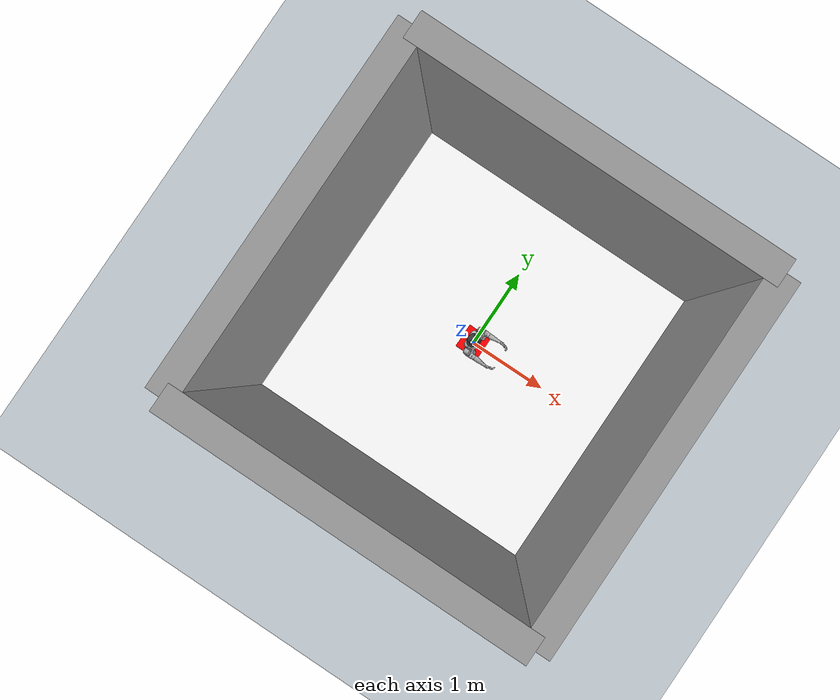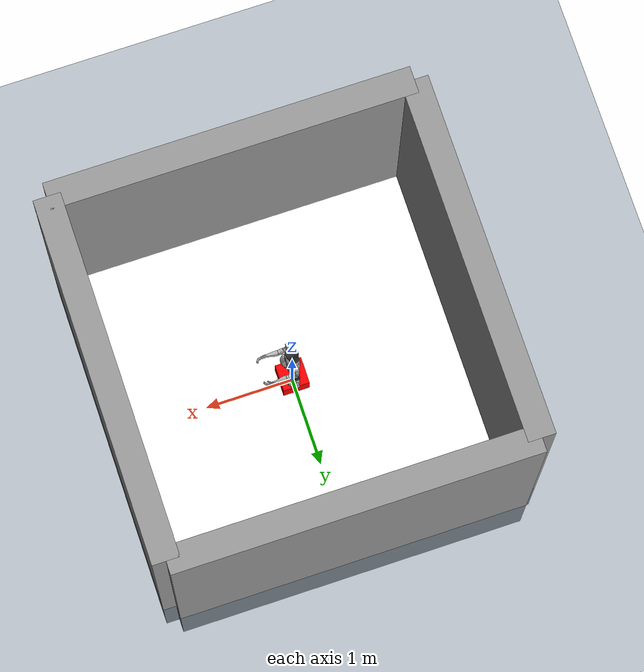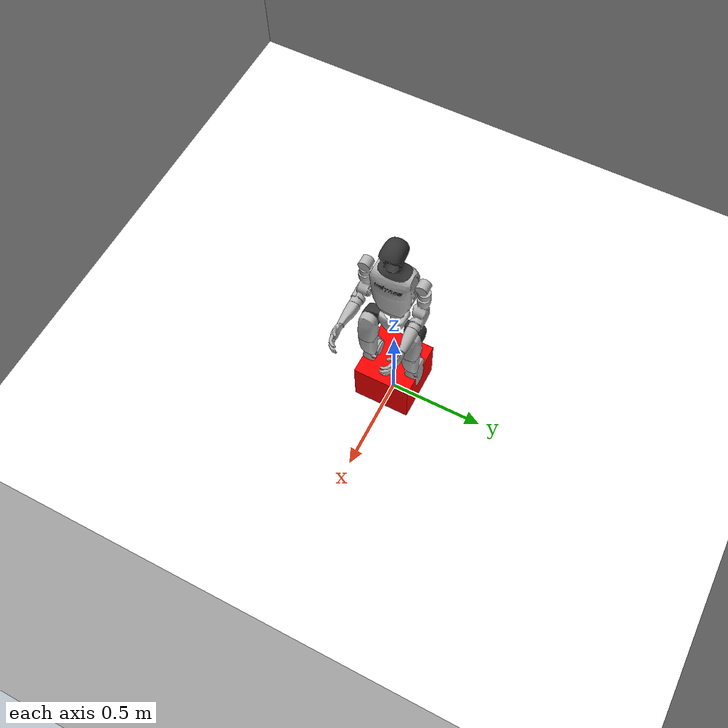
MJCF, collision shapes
<?xml version="1.0" ?>
<mujoco model="Unitree G1 with Room">
  <include file="g1_23dof.xml" />

  <asset>
    <material name="floor_material" rgba="1 1 1 1" specular="0" shininess="0" reflectance="0" />
    <material name="wall_material" rgba="0.6 0.6 0.6 1" specular="0.2" shininess="0.05" />
    <material name="obstacle_material" rgba="1 0 0 1" specular="0.6" shininess="0.2" />
  </asset>

  <extension>
  </extension>

  <option timestep="0.002" gravity="0 0 -9.81">
    <flag warmstart="enable" />
  </option>

  <default>
    <geom conaffinity="1" condim="3" friction="2.5 0.01 0.0001" />
    <joint damping="2.0" />
  </default>

  <worldbody>
    <!-- White floor inside the room (4m x 4m box) -->
    <body name="floor">
      <geom name="floor_white" type="box" size="2 2 0.05" pos="0 0 0" material="floor_material" rgba="1 1 1 1" friction="3.0 0.01 0.0001" condim="4" solimp="0.999 0.999 0.0001" solref="0.001 1" />
    </body>
    <!-- Room walls -->
    <!-- Front wall -->
    <body name="front_wall">
      <geom name="front_wall_geom" type="box" size="2 0.15 2" pos="0 2 1" material="wall_material" friction="1" />
    </body>

    <!-- Back wall -->
    <body name="back_wall">
      <geom name="back_wall_geom" type="box" size="2 0.15 2" pos="0 -2 1" material="wall_material" friction="1" />
    </body>

    <!-- Left wall -->
    <body name="left_wall">
      <geom name="left_wall_geom" type="box" size="0.15 2 2" pos="-2 0 1" material="wall_material" friction="1" />
    </body>

    <!-- Right wall -->
    <body name="right_wall">
      <geom name="right_wall_geom" type="box" size="0.15 2 2" pos="2 0 1" material="wall_material" friction="1" />
    </body>

    <!-- Single obstacle box -->
    <body name="obstacle_box">
      <geom name="obstacle_geom" type="box" size="0.15 0.15 0.15" pos="0 0 0.15" material="obstacle_material" friction="0.8" />
    </body>
  </worldbody>

</mujoco>

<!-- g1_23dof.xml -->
<mujoco model="g1_23dof">
  <compiler angle="radian" meshdir="meshes"/>

  <asset>
    <mesh name="pelvis" file="pelvis.STL"/>
    <mesh name="pelvis_contour_link" file="pelvis_contour_link.STL"/>
    <mesh name="left_hip_pitch_link" file="left_hip_pitch_link.STL"/>
    <mesh name="left_hip_roll_link" file="left_hip_roll_link.STL"/>
    <mesh name="left_hip_yaw_link" file="left_hip_yaw_link.STL"/>
    <mesh name="left_knee_link" file="left_knee_link.STL"/>
    <mesh name="left_ankle_pitch_link" file="left_ankle_pitch_link.STL"/>
    <mesh name="left_ankle_roll_link" file="left_ankle_roll_link.STL"/>
    <mesh name="right_hip_pitch_link" file="right_hip_pitch_link.STL"/>
    <mesh name="right_hip_roll_link" file="right_hip_roll_link.STL"/>
    <mesh name="right_hip_yaw_link" file="right_hip_yaw_link.STL"/>
    <mesh name="right_knee_link" file="right_knee_link.STL"/>
    <mesh name="right_ankle_pitch_link" file="right_ankle_pitch_link.STL"/>
    <mesh name="right_ankle_roll_link" file="right_ankle_roll_link.STL"/>
    <mesh name="waist_yaw_link" file="waist_yaw_link.STL"/>
    <mesh name="torso_link" file="torso_link.STL"/>
    <mesh name="logo_link" file="logo_link.STL"/>
    <mesh name="head_link" file="head_link.STL"/>
    <mesh name="waist_support_link" file="waist_support_link.STL"/>
    <mesh name="left_shoulder_pitch_link" file="left_shoulder_pitch_link.STL"/>
    <mesh name="left_shoulder_roll_link" file="left_shoulder_roll_link.STL"/>
    <mesh name="left_shoulder_yaw_link" file="left_shoulder_yaw_link.STL"/>
    <mesh name="left_elbow_link" file="left_elbow_link.STL"/>
    <mesh name="left_wrist_roll_rubber_hand" file="left_wrist_roll_rubber_hand.STL"/>
    <mesh name="right_shoulder_pitch_link" file="right_shoulder_pitch_link.STL"/>
    <mesh name="right_shoulder_roll_link" file="right_shoulder_roll_link.STL"/>
    <mesh name="right_shoulder_yaw_link" file="right_shoulder_yaw_link.STL"/>
    <mesh name="right_elbow_link" file="right_elbow_link.STL"/>
    <mesh name="right_wrist_roll_rubber_hand" file="right_wrist_roll_rubber_hand.STL"/>
  </asset>

  <worldbody>
    <body name="pelvis" pos="0 0 0.793">
      <inertial pos="0 0 -0.07605" quat="1 0 -0.000399148 0" mass="3.813" diaginertia="0.010549 0.0093089 0.0079184"/>
      <joint name="floating_base_joint" type="free" limited="false" actuatorfrclimited="false"/>
      <geom type="mesh" contype="0" conaffinity="0" group="1" density="0" rgba="0.2 0.2 0.2 1" mesh="pelvis"/>
      <geom type="mesh" contype="0" conaffinity="0" group="1" density="0" rgba="0.7 0.7 0.7 1" mesh="pelvis_contour_link"/>
      <geom type="mesh" rgba="0.7 0.7 0.7 1" mesh="pelvis_contour_link"/>
      <site name="imu_in_pelvis" size="0.01" pos="0.04525 0 -0.08339"/>
      <body name="left_hip_pitch_link" pos="0 0.064452 -0.1027">
        <inertial pos="0.002741 0.047791 -0.02606" quat="0.954862 0.293964 0.0302556 0.030122" mass="1.35" diaginertia="0.00181517 0.00153422 0.00116212"/>
        <joint name="left_hip_pitch_joint" pos="0 0 0" axis="0 1 0" range="-2.5307 2.8798" actuatorfrcrange="-88 88"/>
        <geom type="mesh" contype="0" conaffinity="0" group="1" density="0" rgba="0.2 0.2 0.2 1" mesh="left_hip_pitch_link"/>
        <geom type="mesh" rgba="0.2 0.2 0.2 1" mesh="left_hip_pitch_link"/>
        <body name="left_hip_roll_link" pos="0 0.052 -0.030465" quat="0.996179 0 -0.0873386 0">
          <inertial pos="0.029812 -0.001045 -0.087934" quat="0.977808 -1.97119e-05 0.205576 -0.0403793" mass="1.52" diaginertia="0.00254986 0.00241169 0.00148755"/>
          <joint name="left_hip_roll_joint" pos="0 0 0" axis="1 0 0" range="-0.5236 2.9671" actuatorfrcrange="-88 88"/>
          <geom type="mesh" contype="0" conaffinity="0" group="1" density="0" rgba="0.7 0.7 0.7 1" mesh="left_hip_roll_link"/>
          <geom type="mesh" rgba="0.7 0.7 0.7 1" mesh="left_hip_roll_link"/>
          <body name="left_hip_yaw_link" pos="0.025001 0 -0.12412">
            <inertial pos="-0.057709 -0.010981 -0.15078" quat="0.600598 0.15832 0.223482 0.751181" mass="1.702" diaginertia="0.00776166 0.00717575 0.00160139"/>
            <joint name="left_hip_yaw_joint" pos="0 0 0" axis="0 0 1" range="-2.7576 2.7576" actuatorfrcrange="-88 88"/>
            <geom type="mesh" contype="0" conaffinity="0" group="1" density="0" rgba="0.7 0.7 0.7 1" mesh="left_hip_yaw_link"/>
            <geom type="mesh" rgba="0.7 0.7 0.7 1" mesh="left_hip_yaw_link"/>
            <body name="left_knee_link" pos="-0.078273 0.0021489 -0.17734" quat="0.996179 0 0.0873386 0">
              <inertial pos="0.005457 0.003964 -0.12074" quat="0.923418 -0.0327699 0.0158246 0.382067" mass="1.932" diaginertia="0.0113804 0.0112778 0.00146458"/>
              <joint name="left_knee_joint" pos="0 0 0" axis="0 1 0" range="-0.087267 2.8798" actuatorfrcrange="-139 139"/>
              <geom type="mesh" contype="0" conaffinity="0" group="1" density="0" rgba="0.7 0.7 0.7 1" mesh="left_knee_link"/>
              <geom type="mesh" rgba="0.7 0.7 0.7 1" mesh="left_knee_link"/>
              <body name="left_ankle_pitch_link" pos="0 -9.4445e-05 -0.30001">
                <inertial pos="-0.007269 0 0.011137" quat="0.603053 0.369225 0.369225 0.603053" mass="0.074" diaginertia="1.89e-05 1.40805e-05 6.9195e-06"/>
                <joint name="left_ankle_pitch_joint" pos="0 0 0" axis="0 1 0" range="-0.87267 0.5236" actuatorfrcrange="-50 50"/>
                <geom type="mesh" contype="0" conaffinity="0" group="1" density="0" rgba="0.7 0.7 0.7 1" mesh="left_ankle_pitch_link"/>
                <geom type="mesh" rgba="0.7 0.7 0.7 1" mesh="left_ankle_pitch_link"/>
                <body name="left_ankle_roll_link" pos="0 0 -0.017558">
                  <inertial pos="0.026505 0 -0.016425" quat="-0.000481092 0.728482 -0.000618967 0.685065" mass="0.608" diaginertia="0.00167218 0.0016161 0.000217621"/>
                  <joint name="left_ankle_roll_joint" pos="0 0 0" axis="1 0 0" range="-0.2618 0.2618" actuatorfrcrange="-50 50"/>
                  <geom type="mesh" contype="0" conaffinity="0" group="1" density="0" rgba="0.2 0.2 0.2 1" mesh="left_ankle_roll_link"/>
                  <geom size="0.005" pos="-0.05 0.025 -0.03" rgba="0.2 0.2 0.2 1" friction="3.5 0.01 0.0001" condim="4" solimp="0.999 0.999 0.0001" priority="1"/>
                  <geom size="0.005" pos="-0.05 -0.025 -0.03" rgba="0.2 0.2 0.2 1" friction="3.5 0.01 0.0001" condim="4" solimp="0.999 0.999 0.0001" priority="1"/>
                  <geom size="0.005" pos="0.12 0.03 -0.03" rgba="0.2 0.2 0.2 1" friction="3.5 0.01 0.0001" condim="4" solimp="0.999 0.999 0.0001" priority="1"/>
                  <geom size="0.005" pos="0.12 -0.03 -0.03" rgba="0.2 0.2 0.2 1" friction="3.5 0.01 0.0001" condim="4" solimp="0.999 0.999 0.0001" priority="1"/>
                </body>
              </body>
            </body>
          </body>
        </body>
      </body>
      <body name="right_hip_pitch_link" pos="0 -0.064452 -0.1027">
        <inertial pos="0.002741 -0.047791 -0.02606" quat="0.954862 -0.293964 0.0302556 -0.030122" mass="1.35" diaginertia="0.00181517 0.00153422 0.00116212"/>
        <joint name="right_hip_pitch_joint" pos="0 0 0" axis="0 1 0" range="-2.5307 2.8798" actuatorfrcrange="-88 88"/>
        <geom type="mesh" contype="0" conaffinity="0" group="1" density="0" rgba="0.2 0.2 0.2 1" mesh="right_hip_pitch_link"/>
        <geom type="mesh" rgba="0.2 0.2 0.2 1" mesh="right_hip_pitch_link"/>
        <body name="right_hip_roll_link" pos="0 -0.052 -0.030465" quat="0.996179 0 -0.0873386 0">
          <inertial pos="0.029812 0.001045 -0.087934" quat="0.977808 1.97119e-05 0.205576 0.0403793" mass="1.52" diaginertia="0.00254986 0.00241169 0.00148755"/>
          <joint name="right_hip_roll_joint" pos="0 0 0" axis="1 0 0" range="-2.9671 0.5236" actuatorfrcrange="-88 88"/>
          <geom type="mesh" contype="0" conaffinity="0" group="1" density="0" rgba="0.7 0.7 0.7 1" mesh="right_hip_roll_link"/>
          <geom type="mesh" rgba="0.7 0.7 0.7 1" mesh="right_hip_roll_link"/>
          <body name="right_hip_yaw_link" pos="0.025001 0 -0.12412">
            <inertial pos="-0.057709 0.010981 -0.15078" quat="0.751181 0.223482 0.15832 0.600598" mass="1.702" diaginertia="0.00776166 0.00717575 0.00160139"/>
            <joint name="right_hip_yaw_joint" pos="0 0 0" axis="0 0 1" range="-2.7576 2.7576" actuatorfrcrange="-88 88"/>
            <geom type="mesh" contype="0" conaffinity="0" group="1" density="0" rgba="0.7 0.7 0.7 1" mesh="right_hip_yaw_link"/>
            <geom type="mesh" rgba="0.7 0.7 0.7 1" mesh="right_hip_yaw_link"/>
            <body name="right_knee_link" pos="-0.078273 -0.0021489 -0.17734" quat="0.996179 0 0.0873386 0">
              <inertial pos="0.005457 -0.003964 -0.12074" quat="0.923439 0.0345276 0.0116333 -0.382012" mass="1.932" diaginertia="0.011374 0.0112843 0.00146452"/>
              <joint name="right_knee_joint" pos="0 0 0" axis="0 1 0" range="-0.087267 2.8798" actuatorfrcrange="-139 139"/>
              <geom type="mesh" contype="0" conaffinity="0" group="1" density="0" rgba="0.7 0.7 0.7 1" mesh="right_knee_link"/>
              <geom type="mesh" rgba="0.7 0.7 0.7 1" mesh="right_knee_link"/>
              <body name="right_ankle_pitch_link" pos="0 9.4445e-05 -0.30001">
                <inertial pos="-0.007269 0 0.011137" quat="0.603053 0.369225 0.369225 0.603053" mass="0.074" diaginertia="1.89e-05 1.40805e-05 6.9195e-06"/>
                <joint name="right_ankle_pitch_joint" pos="0 0 0" axis="0 1 0" range="-0.87267 0.5236" actuatorfrcrange="-50 50"/>
                <geom type="mesh" contype="0" conaffinity="0" group="1" density="0" rgba="0.7 0.7 0.7 1" mesh="right_ankle_pitch_link"/>
                <geom type="mesh" rgba="0.7 0.7 0.7 1" mesh="right_ankle_pitch_link"/>
                <body name="right_ankle_roll_link" pos="0 0 -0.017558">
                  <inertial pos="0.026505 0 -0.016425" quat="0.000481092 0.728482 0.000618967 0.685065" mass="0.608" diaginertia="0.00167218 0.0016161 0.000217621"/>
                  <joint name="right_ankle_roll_joint" pos="0 0 0" axis="1 0 0" range="-0.2618 0.2618" actuatorfrcrange="-50 50"/>
                  <geom type="mesh" contype="0" conaffinity="0" group="1" density="0" rgba="0.2 0.2 0.2 1" mesh="right_ankle_roll_link"/>
                  <geom size="0.005" pos="-0.05 0.025 -0.03" rgba="0.2 0.2 0.2 1" friction="3.5 0.01 0.0001" condim="4" solimp="0.999 0.999 0.0001" priority="1"/>
                  <geom size="0.005" pos="-0.05 -0.025 -0.03" rgba="0.2 0.2 0.2 1" friction="3.5 0.01 0.0001" condim="4" solimp="0.999 0.999 0.0001" priority="1"/>
                  <geom size="0.005" pos="0.12 0.03 -0.03" rgba="0.2 0.2 0.2 1" friction="3.5 0.01 0.0001" condim="4" solimp="0.999 0.999 0.0001" priority="1"/>
                  <geom size="0.005" pos="0.12 -0.03 -0.03" rgba="0.2 0.2 0.2 1" friction="3.5 0.01 0.0001" condim="4" solimp="0.999 0.999 0.0001" priority="1"/>
                </body>
              </body>
            </body>
          </body>
        </body>
      </body>
      <body name="torso_link" pos="-0.0039635 0 0.054">
        <inertial pos="0.0034309 0.00025505 0.174524" quat="0.99988 0.000261157 0.0149809 -0.0038211" mass="9.842" diaginertia="0.135151 0.123088 0.0327256"/>
        <joint name="waist_yaw_joint" pos="0 0 0" axis="0 0 1" range="-2.618 2.618" actuatorfrcrange="-88 88"/>
        <geom type="mesh" contype="0" conaffinity="0" group="1" density="0" rgba="0.7 0.7 0.7 1" mesh="torso_link"/>
        <geom type="mesh" rgba="0.7 0.7 0.7 1" mesh="torso_link"/>
        <geom pos="0.0039635 0 -0.054" quat="1 0 0 0" type="mesh" contype="0" conaffinity="0" group="1" density="0" rgba="0.7 0.7 0.7 1" mesh="waist_yaw_link"/>
        <geom pos="0.0039635 0 -0.054" quat="1 0 0 0" type="mesh" contype="0" conaffinity="0" group="1" density="0" rgba="0.2 0.2 0.2 1" mesh="logo_link"/>
        <geom pos="0.0039635 0 -0.054" quat="1 0 0 0" type="mesh" rgba="0.2 0.2 0.2 1" mesh="logo_link"/>
        <geom pos="0.0039635 0 -0.054" type="mesh" contype="0" conaffinity="0" group="1" density="0" rgba="0.2 0.2 0.2 1" mesh="head_link"/>
        <geom pos="0.0039635 0 -0.054" type="mesh" rgba="0.2 0.2 0.2 1" mesh="head_link"/>
        <geom pos="0.0039635 0 -0.054" quat="1 0 0 0" type="mesh" contype="0" conaffinity="0" group="1" density="0" rgba="0.7 0.7 0.7 1" mesh="waist_support_link"/>
        <geom pos="0.0039635 0 -0.054" quat="1 0 0 0" type="mesh" rgba="0.7 0.7 0.7 1" mesh="waist_support_link"/>
        <site name="imu_in_torso" size="0.01" pos="-0.03959 -0.00224 0.13792"/>
        <!-- Camera mounted on torso (head area) -->
        <camera name="rgb_camera" pos="0.15 0 0.25" xyaxes="0 -1 0 0.1 0 1" fovy="90" />
        <body name="left_shoulder_pitch_link" pos="0.0039563 0.10022 0.23778" quat="0.990264 0.139201 1.38722e-05 -9.86868e-05">
          <inertial pos="0 0.035892 -0.011628" quat="0.654152 0.0130458 -0.326267 0.68225" mass="0.718" diaginertia="0.000465864 0.000432842 0.000406394"/>
          <joint name="left_shoulder_pitch_joint" pos="0 0 0" axis="0 1 0" range="-3.0892 2.6704" actuatorfrcrange="-25 25"/>
          <geom type="mesh" contype="0" conaffinity="0" group="1" density="0" rgba="0.7 0.7 0.7 1" mesh="left_shoulder_pitch_link"/>
          <geom size="0.03 0.025" pos="0 0.04 -0.01" quat="0.707107 0 0.707107 0" type="cylinder" rgba="0.7 0.7 0.7 1"/>
          <body name="left_shoulder_roll_link" pos="0 0.038 -0.013831" quat="0.990268 -0.139172 0 0">
            <inertial pos="-0.000227 0.00727 -0.063243" quat="0.701256 -0.0196223 -0.00710317 0.712604" mass="0.643" diaginertia="0.000691311 0.000618011 0.000388977"/>
            <joint name="left_shoulder_roll_joint" pos="0 0 0" axis="1 0 0" range="-1.5882 2.2515" actuatorfrcrange="-25 25"/>
            <geom type="mesh" contype="0" conaffinity="0" group="1" density="0" rgba="0.7 0.7 0.7 1" mesh="left_shoulder_roll_link"/>
            <geom size="0.03 0.015" pos="-0.004 0.006 -0.053" type="cylinder" rgba="0.7 0.7 0.7 1"/>
            <body name="left_shoulder_yaw_link" pos="0 0.00624 -0.1032">
              <inertial pos="0.010773 -0.002949 -0.072009" quat="0.716879 -0.0964829 -0.0679942 0.687134" mass="0.734" diaginertia="0.00106187 0.00103217 0.000400661"/>
              <joint name="left_shoulder_yaw_joint" pos="0 0 0" axis="0 0 1" range="-2.618 2.618" actuatorfrcrange="-25 25"/>
              <geom type="mesh" contype="0" conaffinity="0" group="1" density="0" rgba="0.7 0.7 0.7 1" mesh="left_shoulder_yaw_link"/>
              <geom type="mesh" rgba="0.7 0.7 0.7 1" mesh="left_shoulder_yaw_link"/>
              <body name="left_elbow_link" pos="0.015783 0 -0.080518">
                <inertial pos="0.064956 0.004454 -0.010062" quat="0.541765 0.636132 0.388821 0.388129" mass="0.6" diaginertia="0.000443035 0.000421612 0.000259353"/>
                <joint name="left_elbow_joint" pos="0 0 0" axis="0 1 0" range="-1.0472 2.0944" actuatorfrcrange="-25 25"/>
                <geom type="mesh" contype="0" conaffinity="0" group="1" density="0" rgba="0.7 0.7 0.7 1" mesh="left_elbow_link"/>
                <geom type="mesh" rgba="0.7 0.7 0.7 1" mesh="left_elbow_link"/>
                <body name="left_wrist_roll_rubber_hand" pos="0.1 0.00188791 -0.01">
                  <inertial pos="0.107947 0.00163512 0.00202245" quat="0.494051 0.504265 0.48416 0.516933" mass="0.356929" diaginertia="0.00200292 0.0019426 0.000195232"/>
                  <joint name="left_wrist_roll_joint" pos="0 0 0" axis="1 0 0" range="-1.97222 1.97222" actuatorfrcrange="-25 25"/>
                  <geom type="mesh" contype="0" conaffinity="0" group="1" density="0" rgba="0.7 0.7 0.7 1" mesh="left_wrist_roll_rubber_hand"/>
                  <geom type="mesh" rgba="0.7 0.7 0.7 1" mesh="left_wrist_roll_rubber_hand"/>
                </body>
              </body>
            </body>
          </body>
        </body>
        <body name="right_shoulder_pitch_link" pos="0.0039563 -0.10021 0.23778" quat="0.990264 -0.139201 1.38722e-05 9.86868e-05">
          <inertial pos="0 -0.035892 -0.011628" quat="0.68225 -0.326267 0.0130458 0.654152" mass="0.718" diaginertia="0.000465864 0.000432842 0.000406394"/>
          <joint name="right_shoulder_pitch_joint" pos="0 0 0" axis="0 1 0" range="-3.0892 2.6704" actuatorfrcrange="-25 25"/>
          <geom type="mesh" contype="0" conaffinity="0" group="1" density="0" rgba="0.7 0.7 0.7 1" mesh="right_shoulder_pitch_link"/>
          <geom size="0.03 0.025" pos="0 -0.04 -0.01" quat="0.707107 0 0.707107 0" type="cylinder" rgba="0.7 0.7 0.7 1"/>
          <body name="right_shoulder_roll_link" pos="0 -0.038 -0.013831" quat="0.990268 0.139172 0 0">
            <inertial pos="-0.000227 -0.00727 -0.063243" quat="0.712604 -0.00710317 -0.0196223 0.701256" mass="0.643" diaginertia="0.000691311 0.000618011 0.000388977"/>
            <joint name="right_shoulder_roll_joint" pos="0 0 0" axis="1 0 0" range="-2.2515 1.5882" actuatorfrcrange="-25 25"/>
            <geom type="mesh" contype="0" conaffinity="0" group="1" density="0" rgba="0.7 0.7 0.7 1" mesh="right_shoulder_roll_link"/>
            <geom size="0.03 0.015" pos="-0.004 -0.006 -0.053" type="cylinder" rgba="0.7 0.7 0.7 1"/>
            <body name="right_shoulder_yaw_link" pos="0 -0.00624 -0.1032">
              <inertial pos="0.010773 0.002949 -0.072009" quat="0.687134 -0.0679942 -0.0964829 0.716879" mass="0.734" diaginertia="0.00106187 0.00103217 0.000400661"/>
              <joint name="right_shoulder_yaw_joint" pos="0 0 0" axis="0 0 1" range="-2.618 2.618" actuatorfrcrange="-25 25"/>
              <geom type="mesh" contype="0" conaffinity="0" group="1" density="0" rgba="0.7 0.7 0.7 1" mesh="right_shoulder_yaw_link"/>
              <geom type="mesh" rgba="0.7 0.7 0.7 1" mesh="right_shoulder_yaw_link"/>
              <body name="right_elbow_link" pos="0.015783 0 -0.080518">
                <inertial pos="0.064956 -0.004454 -0.010062" quat="0.388129 0.388821 0.636132 0.541765" mass="0.6" diaginertia="0.000443035 0.000421612 0.000259353"/>
                <joint name="right_elbow_joint" pos="0 0 0" axis="0 1 0" range="-1.0472 2.0944" actuatorfrcrange="-25 25"/>
                <geom type="mesh" contype="0" conaffinity="0" group="1" density="0" rgba="0.7 0.7 0.7 1" mesh="right_elbow_link"/>
                <geom type="mesh" rgba="0.7 0.7 0.7 1" mesh="right_elbow_link"/>
                <body name="right_wrist_roll_rubber_hand" pos="0.1 -0.00188791 -0.01">
                  <inertial pos="0.107947 -0.00163512 0.00202245" quat="0.516933 0.48416 0.504265 0.494051" mass="0.356929" diaginertia="0.00200292 0.0019426 0.000195232"/>
                  <joint name="right_wrist_roll_joint" pos="0 0 0" axis="1 0 0" range="-1.97222 1.97222" actuatorfrcrange="-25 25"/>
                  <geom type="mesh" contype="0" conaffinity="0" group="1" density="0" rgba="0.7 0.7 0.7 1" mesh="right_wrist_roll_rubber_hand"/>
                  <geom type="mesh" rgba="0.7 0.7 0.7 1" mesh="right_wrist_roll_rubber_hand"/>
                </body>
              </body>
            </body>
          </body>
        </body>
      </body>
    </body>
  </worldbody>

  <actuator>
    <motor name="left_hip_pitch_joint" joint="left_hip_pitch_joint"/>
    <motor name="left_hip_roll_joint" joint="left_hip_roll_joint"/>
    <motor name="left_hip_yaw_joint" joint="left_hip_yaw_joint"/>
    <motor name="left_knee_joint" joint="left_knee_joint"/>
    <motor name="left_ankle_pitch_joint" joint="left_ankle_pitch_joint"/>
    <motor name="left_ankle_roll_joint" joint="left_ankle_roll_joint"/>
    <motor name="right_hip_pitch_joint" joint="right_hip_pitch_joint"/>
    <motor name="right_hip_roll_joint" joint="right_hip_roll_joint"/>
    <motor name="right_hip_yaw_joint" joint="right_hip_yaw_joint"/>
    <motor name="right_knee_joint" joint="right_knee_joint"/>
    <motor name="right_ankle_pitch_joint" joint="right_ankle_pitch_joint"/>
    <motor name="right_ankle_roll_joint" joint="right_ankle_roll_joint"/>
    <motor name="waist_yaw_joint" joint="waist_yaw_joint"/>
    <motor name="left_shoulder_pitch_joint" joint="left_shoulder_pitch_joint"/>
    <motor name="left_shoulder_roll_joint" joint="left_shoulder_roll_joint"/>
    <motor name="left_shoulder_yaw_joint" joint="left_shoulder_yaw_joint"/>
    <motor name="left_elbow_joint" joint="left_elbow_joint"/>
    <motor name="left_wrist_roll_joint" joint="left_wrist_roll_joint"/>
    <motor name="right_shoulder_pitch_joint" joint="right_shoulder_pitch_joint"/>
    <motor name="right_shoulder_roll_joint" joint="right_shoulder_roll_joint"/>
    <motor name="right_shoulder_yaw_joint" joint="right_shoulder_yaw_joint"/>
    <motor name="right_elbow_joint" joint="right_elbow_joint"/>
    <motor name="right_wrist_roll_joint" joint="right_wrist_roll_joint"/>
  </actuator>

  <sensor>
    <gyro name="imu-torso-angular-velocity" site="imu_in_torso" noise="5e-4" cutoff="34.9"/>
    <accelerometer name="imu-torso-linear-acceleration" site="imu_in_torso" noise="1e-2" cutoff="157"/>
    <gyro name="imu-pelvis-angular-velocity" site="imu_in_pelvis" noise="5e-4" cutoff="34.9"/>
    <accelerometer name="imu-pelvis-linear-acceleration" site="imu_in_pelvis" noise="1e-2" cutoff="157"/>
  </sensor>

  <!-- setup scene -->
  <statistic center="1.0 0.7 1.0" extent="0.8"/>
  <visual>
    <headlight diffuse="0.6 0.6 0.6" ambient="0.1 0.1 0.1" specular="0.9 0.9 0.9"/>
    <rgba haze="0.15 0.25 0.35 1"/>
    <global azimuth="-140" elevation="-20"/>
  </visual>
  <asset>
    <texture type="skybox" builtin="flat" rgb1="0 0 0" rgb2="0 0 0" width="512" height="3072"/>
    <texture type="2d" name="groundplane" builtin="checker" mark="edge" rgb1="0.2 0.3 0.4" rgb2="0.1 0.2 0.3" markrgb="0.8 0.8 0.8" width="300" height="300"/>
    <material name="groundplane" texture="groundplane" texuniform="true" texrepeat="5 5" reflectance="0.2"/>
  </asset>
  <worldbody>
    <light pos="1 0 3.5" dir="0 0 -1" directional="true"/>
    <geom name="floor" size="0 0 0.05" type="plane" material="groundplane"/>
  </worldbody>
</mujoco>
